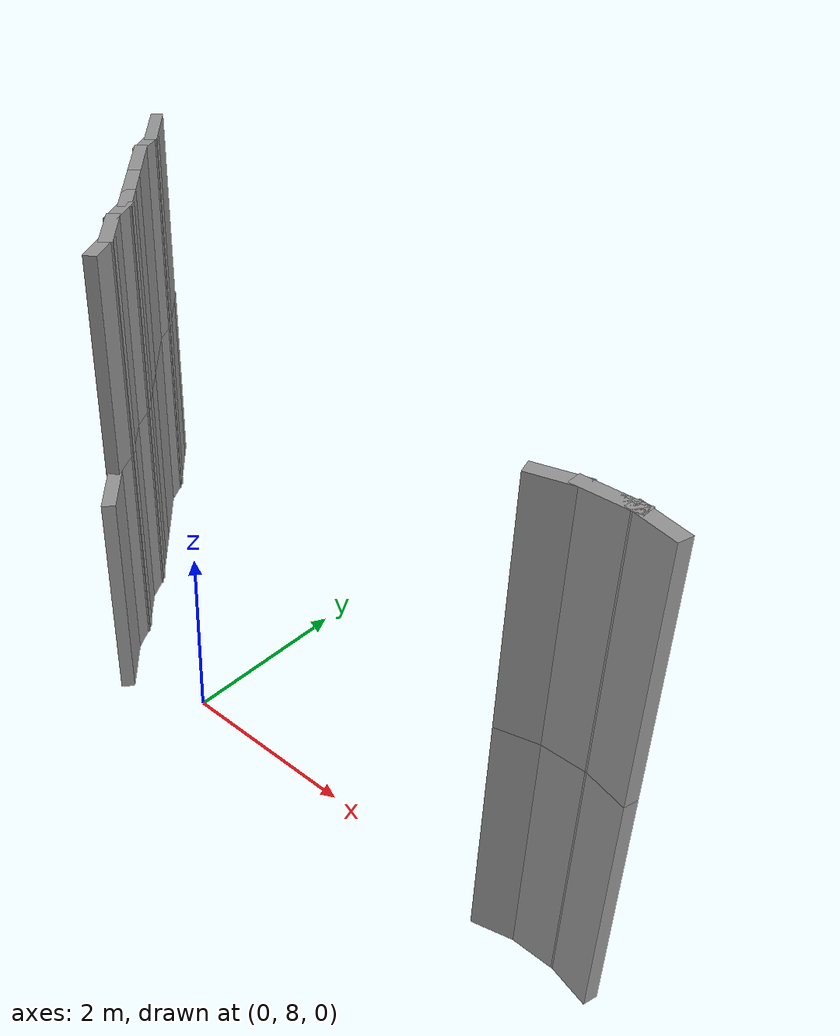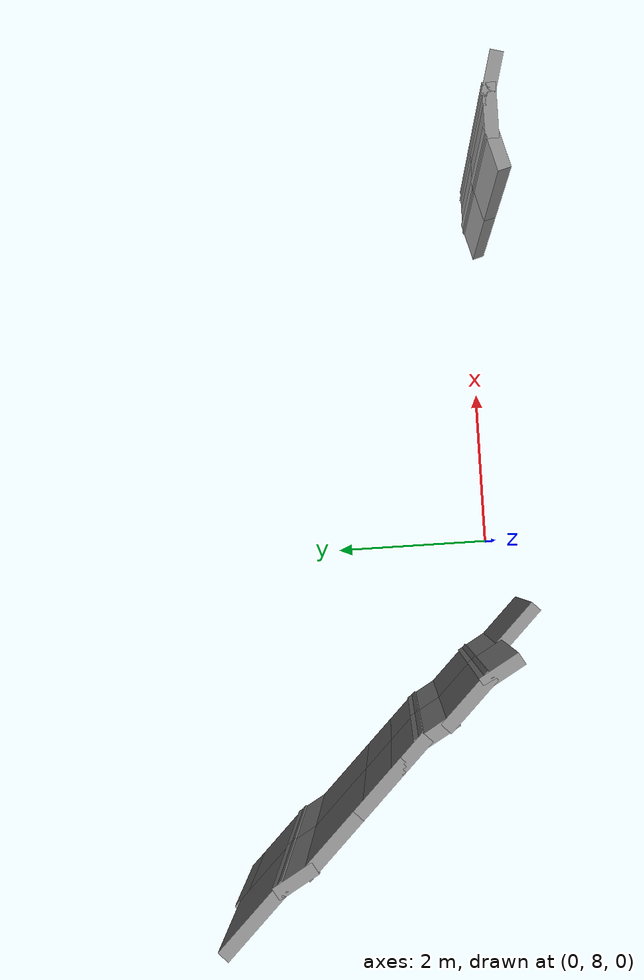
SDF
<sdf version="1.7">
 <model name="EnvDC01">
  <link name="Wall_285">
   <pose>4.92828 7.91155 2.5 0 -0 2.87979</pose>
   <visual name="Wall_285_Visual">
    <pose>0 0 1.25 0 -0 0</pose>
    <geometry><box><size>0.5 0.15 2.5</size></box></geometry>
    <material>
     <script><uri>file://media/materials/scripts/gazebo.material</uri><name>Gazebo/Grey</name></script>
     <ambient>1 1 1 1</ambient>
     <shader type="pixel"/>
    </material>
    <meta><layer>1</layer></meta>
   </visual>
   <collision name="Wall_285_Collision">
    <pose>0 0 1.25 0 -0 0</pose>
    <geometry><box><size>0.5 0.15 2.5</size></box></geometry>
    <surface>
     <friction>
      <ode><mu>1</mu><mu2>1</mu2><fdir1>0 0 0</fdir1><slip1>0</slip1><slip2>0</slip2></ode>
      <torsional>
       <coefficient>1</coefficient>
       <patch_radius>0</patch_radius>
       <surface_radius>0</surface_radius>
       <use_patch_radius>1</use_patch_radius>
       <ode><slip>0</slip></ode>
      </torsional>
     </friction>
     <bounce><restitution_coefficient>0</restitution_coefficient><threshold>1e+06</threshold></bounce>
     <contact>
      <collide_without_contact>0</collide_without_contact>
      <collide_without_contact_bitmask>1</collide_without_contact_bitmask>
      <collide_bitmask>1</collide_bitmask>
      <ode>
       <soft_cfm>0</soft_cfm>
       <soft_erp>0.2</soft_erp>
       <kp>1e+13</kp>
       <kd>1</kd>
       <max_vel>0.01</max_vel>
       <min_depth>0</min_depth>
      </ode>
      <bullet>
       <split_impulse>1</split_impulse>
       <split_impulse_penetration_threshold>-0.01</split_impulse_penetration_threshold>
       <soft_cfm>0</soft_cfm>
       <soft_erp>0.2</soft_erp>
       <kp>1e+13</kp>
       <kd>1</kd>
      </bullet>
     </contact>
    </surface>
   </collision>
  </link>
  <link name="Wall_286">
   <pose>4.70925 7.95684 2.5 0 -0 3.14159</pose>
   <visual name="Wall_286_Visual">
    <pose>0 0 1.25 0 -0 0</pose>
    <geometry><box><size>0.25 0.15 2.5</size></box></geometry>
    <material>
     <script><uri>file://media/materials/scripts/gazebo.material</uri><name>Gazebo/Grey</name></script>
     <ambient>1 1 1 1</ambient>
     <shader type="pixel"/>
    </material>
    <meta><layer>1</layer></meta>
   </visual>
   <collision name="Wall_286_Collision">
    <pose>0 0 1.25 0 -0 0</pose>
    <geometry><box><size>0.25 0.15 2.5</size></box></geometry>
    <surface>
     <friction>
      <ode><mu>1</mu><mu2>1</mu2><fdir1>0 0 0</fdir1><slip1>0</slip1><slip2>0</slip2></ode>
      <torsional>
       <coefficient>1</coefficient>
       <patch_radius>0</patch_radius>
       <surface_radius>0</surface_radius>
       <use_patch_radius>1</use_patch_radius>
       <ode><slip>0</slip></ode>
      </torsional>
     </friction>
     <bounce><restitution_coefficient>0</restitution_coefficient><threshold>1e+06</threshold></bounce>
     <contact>
      <collide_without_contact>0</collide_without_contact>
      <collide_without_contact_bitmask>1</collide_without_contact_bitmask>
      <collide_bitmask>1</collide_bitmask>
      <ode>
       <soft_cfm>0</soft_cfm>
       <soft_erp>0.2</soft_erp>
       <kp>1e+13</kp>
       <kd>1</kd>
       <max_vel>0.01</max_vel>
       <min_depth>0</min_depth>
      </ode>
      <bullet>
       <split_impulse>1</split_impulse>
       <split_impulse_penetration_threshold>-0.01</split_impulse_penetration_threshold>
       <soft_cfm>0</soft_cfm>
       <soft_erp>0.2</soft_erp>
       <kp>1e+13</kp>
       <kd>1</kd>
      </bullet>
     </contact>
    </surface>
   </collision>
  </link>
  <link name="Wall_287">
   <pose>4.48425 7.95684 2.5 0 -0 3.14159</pose>
   <visual name="Wall_287_Visual">
    <pose>0 0 1.25 0 -0 0</pose>
    <geometry><box><size>0.5 0.15 2.5</size></box></geometry>
    <material>
     <script><uri>file://media/materials/scripts/gazebo.material</uri><name>Gazebo/Grey</name></script>
     <ambient>1 1 1 1</ambient>
     <shader type="pixel"/>
    </material>
    <meta><layer>1</layer></meta>
   </visual>
   <collision name="Wall_287_Collision">
    <pose>0 0 1.25 0 -0 0</pose>
    <geometry><box><size>0.5 0.15 2.5</size></box></geometry>
    <surface>
     <friction>
      <ode><mu>1</mu><mu2>1</mu2><fdir1>0 0 0</fdir1><slip1>0</slip1><slip2>0</slip2></ode>
      <torsional>
       <coefficient>1</coefficient>
       <patch_radius>0</patch_radius>
       <surface_radius>0</surface_radius>
       <use_patch_radius>1</use_patch_radius>
       <ode><slip>0</slip></ode>
      </torsional>
     </friction>
     <bounce><restitution_coefficient>0</restitution_coefficient><threshold>1e+06</threshold></bounce>
     <contact>
      <collide_without_contact>0</collide_without_contact>
      <collide_without_contact_bitmask>1</collide_without_contact_bitmask>
      <collide_bitmask>1</collide_bitmask>
      <ode>
       <soft_cfm>0</soft_cfm>
       <soft_erp>0.2</soft_erp>
       <kp>1e+13</kp>
       <kd>1</kd>
       <max_vel>0.01</max_vel>
       <min_depth>0</min_depth>
      </ode>
      <bullet>
       <split_impulse>1</split_impulse>
       <split_impulse_penetration_threshold>-0.01</split_impulse_penetration_threshold>
       <soft_cfm>0</soft_cfm>
       <soft_erp>0.2</soft_erp>
       <kp>1e+13</kp>
       <kd>1</kd>
      </bullet>
     </contact>
    </surface>
   </collision>
  </link>
  <link name="Wall_288">
   <pose>4.14021 7.91155 2.5 0 0 -2.87979</pose>
   <visual name="Wall_288_Visual">
    <pose>0 0 1.25 0 -0 0</pose>
    <geometry><box><size>0.5 0.15 2.5</size></box></geometry>
    <material>
     <script><uri>file://media/materials/scripts/gazebo.material</uri><name>Gazebo/Grey</name></script>
     <ambient>1 1 1 1</ambient>
     <shader type="pixel"/>
    </material>
    <meta><layer>1</layer></meta>
   </visual>
   <collision name="Wall_288_Collision">
    <pose>0 0 1.25 0 -0 0</pose>
    <geometry><box><size>0.5 0.15 2.5</size></box></geometry>
    <surface>
     <friction>
      <ode><mu>1</mu><mu2>1</mu2><fdir1>0 0 0</fdir1><slip1>0</slip1><slip2>0</slip2></ode>
      <torsional>
       <coefficient>1</coefficient>
       <patch_radius>0</patch_radius>
       <surface_radius>0</surface_radius>
       <use_patch_radius>1</use_patch_radius>
       <ode><slip>0</slip></ode>
      </torsional>
     </friction>
     <bounce><restitution_coefficient>0</restitution_coefficient><threshold>1e+06</threshold></bounce>
     <contact>
      <collide_without_contact>0</collide_without_contact>
      <collide_without_contact_bitmask>1</collide_without_contact_bitmask>
      <collide_bitmask>1</collide_bitmask>
      <ode>
       <soft_cfm>0</soft_cfm>
       <soft_erp>0.2</soft_erp>
       <kp>1e+13</kp>
       <kd>1</kd>
       <max_vel>0.01</max_vel>
       <min_depth>0</min_depth>
      </ode>
      <bullet>
       <split_impulse>1</split_impulse>
       <split_impulse_penetration_threshold>-0.01</split_impulse_penetration_threshold>
       <soft_cfm>0</soft_cfm>
       <soft_erp>0.2</soft_erp>
       <kp>1e+13</kp>
       <kd>1</kd>
      </bullet>
     </contact>
    </surface>
   </collision>
  </link>
  <link name="Wall_297">
   <pose>-1.39734 8.22269 2.5 0 -0 2.0944</pose>
   <visual name="Wall_297_Visual">
    <pose>0 0 1.25 0 -0 0</pose>
    <geometry><box><size>0.5 0.15 2.5</size></box></geometry>
    <material>
     <script><uri>file://media/materials/scripts/gazebo.material</uri><name>Gazebo/Grey</name></script>
     <ambient>1 1 1 1</ambient>
     <shader type="pixel"/>
    </material>
    <meta><layer>1</layer></meta>
   </visual>
   <collision name="Wall_297_Collision">
    <pose>0 0 1.25 0 -0 0</pose>
    <geometry><box><size>0.5 0.15 2.5</size></box></geometry>
    <surface>
     <friction>
      <ode><mu>1</mu><mu2>1</mu2><fdir1>0 0 0</fdir1><slip1>0</slip1><slip2>0</slip2></ode>
      <torsional>
       <coefficient>1</coefficient>
       <patch_radius>0</patch_radius>
       <surface_radius>0</surface_radius>
       <use_patch_radius>1</use_patch_radius>
       <ode><slip>0</slip></ode>
      </torsional>
     </friction>
     <bounce><restitution_coefficient>0</restitution_coefficient><threshold>1e+06</threshold></bounce>
     <contact>
      <collide_without_contact>0</collide_without_contact>
      <collide_without_contact_bitmask>1</collide_without_contact_bitmask>
      <collide_bitmask>1</collide_bitmask>
      <ode>
       <soft_cfm>0</soft_cfm>
       <soft_erp>0.2</soft_erp>
       <kp>1e+13</kp>
       <kd>1</kd>
       <max_vel>0.01</max_vel>
       <min_depth>0</min_depth>
      </ode>
      <bullet>
       <split_impulse>1</split_impulse>
       <split_impulse_penetration_threshold>-0.01</split_impulse_penetration_threshold>
       <soft_cfm>0</soft_cfm>
       <soft_erp>0.2</soft_erp>
       <kp>1e+13</kp>
       <kd>1</kd>
      </bullet>
     </contact>
    </surface>
   </collision>
  </link>
  <link name="Wall_298">
   <pose>-1.69697 8.58637 2.5 0 -0 2.35619</pose>
   <visual name="Wall_298_Visual">
    <pose>0 0 1.25 0 -0 0</pose>
    <geometry><box><size>0.75 0.15 2.5</size></box></geometry>
    <material>
     <script><uri>file://media/materials/scripts/gazebo.material</uri><name>Gazebo/Grey</name></script>
     <ambient>1 1 1 1</ambient>
     <shader type="pixel"/>
    </material>
    <meta><layer>1</layer></meta>
   </visual>
   <collision name="Wall_298_Collision">
    <pose>0 0 1.25 0 -0 0</pose>
    <geometry><box><size>0.75 0.15 2.5</size></box></geometry>
    <surface>
     <friction>
      <ode><mu>1</mu><mu2>1</mu2><fdir1>0 0 0</fdir1><slip1>0</slip1><slip2>0</slip2></ode>
      <torsional>
       <coefficient>1</coefficient>
       <patch_radius>0</patch_radius>
       <surface_radius>0</surface_radius>
       <use_patch_radius>1</use_patch_radius>
       <ode><slip>0</slip></ode>
      </torsional>
     </friction>
     <bounce><restitution_coefficient>0</restitution_coefficient><threshold>1e+06</threshold></bounce>
     <contact>
      <collide_without_contact>0</collide_without_contact>
      <collide_without_contact_bitmask>1</collide_without_contact_bitmask>
      <collide_bitmask>1</collide_bitmask>
      <ode>
       <soft_cfm>0</soft_cfm>
       <soft_erp>0.2</soft_erp>
       <kp>1e+13</kp>
       <kd>1</kd>
       <max_vel>0.01</max_vel>
       <min_depth>0</min_depth>
      </ode>
      <bullet>
       <split_impulse>1</split_impulse>
       <split_impulse_penetration_threshold>-0.01</split_impulse_penetration_threshold>
       <soft_cfm>0</soft_cfm>
       <soft_erp>0.2</soft_erp>
       <kp>1e+13</kp>
       <kd>1</kd>
      </bullet>
     </contact>
    </surface>
   </collision>
  </link>
  <link name="Wall_299">
   <pose>-1.9966 8.95006 2.5 0 -0 2.0944</pose>
   <visual name="Wall_299_Visual">
    <pose>0 0 1.25 0 -0 0</pose>
    <geometry><box><size>0.5 0.15 2.5</size></box></geometry>
    <material>
     <script><uri>file://media/materials/scripts/gazebo.material</uri><name>Gazebo/Grey</name></script>
     <ambient>1 1 1 1</ambient>
     <shader type="pixel"/>
    </material>
    <meta><layer>1</layer></meta>
   </visual>
   <collision name="Wall_299_Collision">
    <pose>0 0 1.25 0 -0 0</pose>
    <geometry><box><size>0.5 0.15 2.5</size></box></geometry>
    <surface>
     <friction>
      <ode><mu>1</mu><mu2>1</mu2><fdir1>0 0 0</fdir1><slip1>0</slip1><slip2>0</slip2></ode>
      <torsional>
       <coefficient>1</coefficient>
       <patch_radius>0</patch_radius>
       <surface_radius>0</surface_radius>
       <use_patch_radius>1</use_patch_radius>
       <ode><slip>0</slip></ode>
      </torsional>
     </friction>
     <bounce><restitution_coefficient>0</restitution_coefficient><threshold>1e+06</threshold></bounce>
     <contact>
      <collide_without_contact>0</collide_without_contact>
      <collide_without_contact_bitmask>1</collide_without_contact_bitmask>
      <collide_bitmask>1</collide_bitmask>
      <ode>
       <soft_cfm>0</soft_cfm>
       <soft_erp>0.2</soft_erp>
       <kp>1e+13</kp>
       <kd>1</kd>
       <max_vel>0.01</max_vel>
       <min_depth>0</min_depth>
      </ode>
      <bullet>
       <split_impulse>1</split_impulse>
       <split_impulse_penetration_threshold>-0.01</split_impulse_penetration_threshold>
       <soft_cfm>0</soft_cfm>
       <soft_erp>0.2</soft_erp>
       <kp>1e+13</kp>
       <kd>1</kd>
      </bullet>
     </contact>
    </surface>
   </collision>
  </link>
  <link name="Wall_300">
   <pose>-2.20785 9.22536 2.5 0 -0 2.35619</pose>
   <visual name="Wall_300_Visual">
    <pose>0 0 1.25 0 -0 0</pose>
    <geometry><box><size>0.5 0.15 2.5</size></box></geometry>
    <material>
     <script><uri>file://media/materials/scripts/gazebo.material</uri><name>Gazebo/Grey</name></script>
     <ambient>1 1 1 1</ambient>
     <shader type="pixel"/>
    </material>
    <meta><layer>1</layer></meta>
   </visual>
   <collision name="Wall_300_Collision">
    <pose>0 0 1.25 0 -0 0</pose>
    <geometry><box><size>0.5 0.15 2.5</size></box></geometry>
    <surface>
     <friction>
      <ode><mu>1</mu><mu2>1</mu2><fdir1>0 0 0</fdir1><slip1>0</slip1><slip2>0</slip2></ode>
      <torsional>
       <coefficient>1</coefficient>
       <patch_radius>0</patch_radius>
       <surface_radius>0</surface_radius>
       <use_patch_radius>1</use_patch_radius>
       <ode><slip>0</slip></ode>
      </torsional>
     </friction>
     <bounce><restitution_coefficient>0</restitution_coefficient><threshold>1e+06</threshold></bounce>
     <contact>
      <collide_without_contact>0</collide_without_contact>
      <collide_without_contact_bitmask>1</collide_without_contact_bitmask>
      <collide_bitmask>1</collide_bitmask>
      <ode>
       <soft_cfm>0</soft_cfm>
       <soft_erp>0.2</soft_erp>
       <kp>1e+13</kp>
       <kd>1</kd>
       <max_vel>0.01</max_vel>
       <min_depth>0</min_depth>
      </ode>
      <bullet>
       <split_impulse>1</split_impulse>
       <split_impulse_penetration_threshold>-0.01</split_impulse_penetration_threshold>
       <soft_cfm>0</soft_cfm>
       <soft_erp>0.2</soft_erp>
       <kp>1e+13</kp>
       <kd>1</kd>
      </bullet>
     </contact>
    </surface>
   </collision>
  </link>
  <link name="Wall_301">
   <pose>-2.54372 9.56123 2.5 0 -0 2.35619</pose>
   <visual name="Wall_301_Visual">
    <pose>0 0 1.25 0 -0 0</pose>
    <geometry><box><size>0.75 0.15 2.5</size></box></geometry>
    <material>
     <script><uri>file://media/materials/scripts/gazebo.material</uri><name>Gazebo/Grey</name></script>
     <ambient>1 1 1 1</ambient>
     <shader type="pixel"/>
    </material>
    <meta><layer>1</layer></meta>
   </visual>
   <collision name="Wall_301_Collision">
    <pose>0 0 1.25 0 -0 0</pose>
    <geometry><box><size>0.75 0.15 2.5</size></box></geometry>
    <surface>
     <friction>
      <ode><mu>1</mu><mu2>1</mu2><fdir1>0 0 0</fdir1><slip1>0</slip1><slip2>0</slip2></ode>
      <torsional>
       <coefficient>1</coefficient>
       <patch_radius>0</patch_radius>
       <surface_radius>0</surface_radius>
       <use_patch_radius>1</use_patch_radius>
       <ode><slip>0</slip></ode>
      </torsional>
     </friction>
     <bounce><restitution_coefficient>0</restitution_coefficient><threshold>1e+06</threshold></bounce>
     <contact>
      <collide_without_contact>0</collide_without_contact>
      <collide_without_contact_bitmask>1</collide_without_contact_bitmask>
      <collide_bitmask>1</collide_bitmask>
      <ode>
       <soft_cfm>0</soft_cfm>
       <soft_erp>0.2</soft_erp>
       <kp>1e+13</kp>
       <kd>1</kd>
       <max_vel>0.01</max_vel>
       <min_depth>0</min_depth>
      </ode>
      <bullet>
       <split_impulse>1</split_impulse>
       <split_impulse_penetration_threshold>-0.01</split_impulse_penetration_threshold>
       <soft_cfm>0</soft_cfm>
       <soft_erp>0.2</soft_erp>
       <kp>1e+13</kp>
       <kd>1</kd>
      </bullet>
     </contact>
    </surface>
   </collision>
  </link>
  <link name="Wall_302">
   <pose>-3.05637 10.0739 2.5 0 -0 2.35619</pose>
   <visual name="Wall_302_Visual">
    <pose>0 0 1.25 0 -0 0</pose>
    <geometry><box><size>1 0.15 2.5</size></box></geometry>
    <material>
     <script><uri>file://media/materials/scripts/gazebo.material</uri><name>Gazebo/Grey</name></script>
     <ambient>1 1 1 1</ambient>
     <shader type="pixel"/>
    </material>
    <meta><layer>1</layer></meta>
   </visual>
   <collision name="Wall_302_Collision">
    <pose>0 0 1.25 0 -0 0</pose>
    <geometry><box><size>1 0.15 2.5</size></box></geometry>
    <surface>
     <friction>
      <ode><mu>1</mu><mu2>1</mu2><fdir1>0 0 0</fdir1><slip1>0</slip1><slip2>0</slip2></ode>
      <torsional>
       <coefficient>1</coefficient>
       <patch_radius>0</patch_radius>
       <surface_radius>0</surface_radius>
       <use_patch_radius>1</use_patch_radius>
       <ode><slip>0</slip></ode>
      </torsional>
     </friction>
     <bounce><restitution_coefficient>0</restitution_coefficient><threshold>1e+06</threshold></bounce>
     <contact>
      <collide_without_contact>0</collide_without_contact>
      <collide_without_contact_bitmask>1</collide_without_contact_bitmask>
      <collide_bitmask>1</collide_bitmask>
      <ode>
       <soft_cfm>0</soft_cfm>
       <soft_erp>0.2</soft_erp>
       <kp>1e+13</kp>
       <kd>1</kd>
       <max_vel>0.01</max_vel>
       <min_depth>0</min_depth>
      </ode>
      <bullet>
       <split_impulse>1</split_impulse>
       <split_impulse_penetration_threshold>-0.01</split_impulse_penetration_threshold>
       <soft_cfm>0</soft_cfm>
       <soft_erp>0.2</soft_erp>
       <kp>1e+13</kp>
       <kd>1</kd>
      </bullet>
     </contact>
    </surface>
   </collision>
  </link>
  <link name="Wall_303">
   <pose>-3.44439 10.526 2.5 0 -0 2.0944</pose>
   <visual name="Wall_303_Visual">
    <pose>0 0 1.25 0 -0 0</pose>
    <geometry><box><size>0.5 0.15 2.5</size></box></geometry>
    <material>
     <script><uri>file://media/materials/scripts/gazebo.material</uri><name>Gazebo/Grey</name></script>
     <ambient>1 1 1 1</ambient>
     <shader type="pixel"/>
    </material>
    <meta><layer>1</layer></meta>
   </visual>
   <collision name="Wall_303_Collision">
    <pose>0 0 1.25 0 -0 0</pose>
    <geometry><box><size>0.5 0.15 2.5</size></box></geometry>
    <surface>
     <friction>
      <ode><mu>1</mu><mu2>1</mu2><fdir1>0 0 0</fdir1><slip1>0</slip1><slip2>0</slip2></ode>
      <torsional>
       <coefficient>1</coefficient>
       <patch_radius>0</patch_radius>
       <surface_radius>0</surface_radius>
       <use_patch_radius>1</use_patch_radius>
       <ode><slip>0</slip></ode>
      </torsional>
     </friction>
     <bounce><restitution_coefficient>0</restitution_coefficient><threshold>1e+06</threshold></bounce>
     <contact>
      <collide_without_contact>0</collide_without_contact>
      <collide_without_contact_bitmask>1</collide_without_contact_bitmask>
      <collide_bitmask>1</collide_bitmask>
      <ode>
       <soft_cfm>0</soft_cfm>
       <soft_erp>0.2</soft_erp>
       <kp>1e+13</kp>
       <kd>1</kd>
       <max_vel>0.01</max_vel>
       <min_depth>0</min_depth>
      </ode>
      <bullet>
       <split_impulse>1</split_impulse>
       <split_impulse_penetration_threshold>-0.01</split_impulse_penetration_threshold>
       <soft_cfm>0</soft_cfm>
       <soft_erp>0.2</soft_erp>
       <kp>1e+13</kp>
       <kd>1</kd>
      </bullet>
     </contact>
    </surface>
   </collision>
  </link>
  <link name="Wall_304">
   <pose>-3.83242 10.978 2.5 0 -0 2.35619</pose>
   <visual name="Wall_304_Visual">
    <pose>0 0 1.25 0 -0 0</pose>
    <geometry><box><size>1 0.15 2.5</size></box></geometry>
    <material>
     <script><uri>file://media/materials/scripts/gazebo.material</uri><name>Gazebo/Grey</name></script>
     <ambient>1 1 1 1</ambient>
     <shader type="pixel"/>
    </material>
    <meta><layer>1</layer></meta>
   </visual>
   <collision name="Wall_304_Collision">
    <pose>0 0 1.25 0 -0 0</pose>
    <geometry><box><size>1 0.15 2.5</size></box></geometry>
    <surface>
     <friction>
      <ode><mu>1</mu><mu2>1</mu2><fdir1>0 0 0</fdir1><slip1>0</slip1><slip2>0</slip2></ode>
      <torsional>
       <coefficient>1</coefficient>
       <patch_radius>0</patch_radius>
       <surface_radius>0</surface_radius>
       <use_patch_radius>1</use_patch_radius>
       <ode><slip>0</slip></ode>
      </torsional>
     </friction>
     <bounce><restitution_coefficient>0</restitution_coefficient><threshold>1e+06</threshold></bounce>
     <contact>
      <collide_without_contact>0</collide_without_contact>
      <collide_without_contact_bitmask>1</collide_without_contact_bitmask>
      <collide_bitmask>1</collide_bitmask>
      <ode>
       <soft_cfm>0</soft_cfm>
       <soft_erp>0.2</soft_erp>
       <kp>1e+13</kp>
       <kd>1</kd>
       <max_vel>0.01</max_vel>
       <min_depth>0</min_depth>
      </ode>
      <bullet>
       <split_impulse>1</split_impulse>
       <split_impulse_penetration_threshold>-0.01</split_impulse_penetration_threshold>
       <soft_cfm>0</soft_cfm>
       <soft_erp>0.2</soft_erp>
       <kp>1e+13</kp>
       <kd>1</kd>
      </bullet>
     </contact>
    </surface>
   </collision>
  </link>
  <link name="Wall_73">
   <pose>4.92828 7.91155 0 0 -0 2.87979</pose>
   <visual name="Wall_73_Visual">
    <pose>0 0 1.25 0 -0 0</pose>
    <geometry><box><size>0.5 0.15 2.5</size></box></geometry>
    <material>
     <script><uri>file://media/materials/scripts/gazebo.material</uri><name>Gazebo/Grey</name></script>
     <ambient>1 1 1 1</ambient>
     <shader type="pixel"/>
    </material>
    <meta><layer>0</layer></meta>
   </visual>
   <collision name="Wall_73_Collision">
    <pose>0 0 1.25 0 -0 0</pose>
    <geometry><box><size>0.5 0.15 2.5</size></box></geometry>
    <surface>
     <friction>
      <ode><mu>1</mu><mu2>1</mu2><fdir1>0 0 0</fdir1><slip1>0</slip1><slip2>0</slip2></ode>
      <torsional>
       <coefficient>1</coefficient>
       <patch_radius>0</patch_radius>
       <surface_radius>0</surface_radius>
       <use_patch_radius>1</use_patch_radius>
       <ode><slip>0</slip></ode>
      </torsional>
     </friction>
     <bounce><restitution_coefficient>0</restitution_coefficient><threshold>1e+06</threshold></bounce>
     <contact>
      <collide_without_contact>0</collide_without_contact>
      <collide_without_contact_bitmask>1</collide_without_contact_bitmask>
      <collide_bitmask>1</collide_bitmask>
      <ode>
       <soft_cfm>0</soft_cfm>
       <soft_erp>0.2</soft_erp>
       <kp>1e+13</kp>
       <kd>1</kd>
       <max_vel>0.01</max_vel>
       <min_depth>0</min_depth>
      </ode>
      <bullet>
       <split_impulse>1</split_impulse>
       <split_impulse_penetration_threshold>-0.01</split_impulse_penetration_threshold>
       <soft_cfm>0</soft_cfm>
       <soft_erp>0.2</soft_erp>
       <kp>1e+13</kp>
       <kd>1</kd>
      </bullet>
     </contact>
    </surface>
   </collision>
  </link>
  <link name="Wall_74">
   <pose>4.70925 7.95684 0 0 -0 3.14159</pose>
   <visual name="Wall_74_Visual">
    <pose>0 0 1.25 0 -0 0</pose>
    <geometry><box><size>0.25 0.15 2.5</size></box></geometry>
    <material>
     <script><uri>file://media/materials/scripts/gazebo.material</uri><name>Gazebo/Grey</name></script>
     <ambient>1 1 1 1</ambient>
     <shader type="pixel"/>
    </material>
    <meta><layer>0</layer></meta>
   </visual>
   <collision name="Wall_74_Collision">
    <pose>0 0 1.25 0 -0 0</pose>
    <geometry><box><size>0.25 0.15 2.5</size></box></geometry>
    <surface>
     <friction>
      <ode><mu>1</mu><mu2>1</mu2><fdir1>0 0 0</fdir1><slip1>0</slip1><slip2>0</slip2></ode>
      <torsional>
       <coefficient>1</coefficient>
       <patch_radius>0</patch_radius>
       <surface_radius>0</surface_radius>
       <use_patch_radius>1</use_patch_radius>
       <ode><slip>0</slip></ode>
      </torsional>
     </friction>
     <bounce><restitution_coefficient>0</restitution_coefficient><threshold>1e+06</threshold></bounce>
     <contact>
      <collide_without_contact>0</collide_without_contact>
      <collide_without_contact_bitmask>1</collide_without_contact_bitmask>
      <collide_bitmask>1</collide_bitmask>
      <ode>
       <soft_cfm>0</soft_cfm>
       <soft_erp>0.2</soft_erp>
       <kp>1e+13</kp>
       <kd>1</kd>
       <max_vel>0.01</max_vel>
       <min_depth>0</min_depth>
      </ode>
      <bullet>
       <split_impulse>1</split_impulse>
       <split_impulse_penetration_threshold>-0.01</split_impulse_penetration_threshold>
       <soft_cfm>0</soft_cfm>
       <soft_erp>0.2</soft_erp>
       <kp>1e+13</kp>
       <kd>1</kd>
      </bullet>
     </contact>
    </surface>
   </collision>
  </link>
  <link name="Wall_75">
   <pose>4.48424 7.95684 0 0 -0 3.14159</pose>
   <visual name="Wall_75_Visual">
    <pose>0 0 1.25 0 -0 0</pose>
    <geometry><box><size>0.5 0.15 2.5</size></box></geometry>
    <material>
     <script><uri>file://media/materials/scripts/gazebo.material</uri><name>Gazebo/Grey</name></script>
     <ambient>1 1 1 1</ambient>
     <shader type="pixel"/>
    </material>
    <meta><layer>0</layer></meta>
   </visual>
   <collision name="Wall_75_Collision">
    <pose>0 0 1.25 0 -0 0</pose>
    <geometry><box><size>0.5 0.15 2.5</size></box></geometry>
    <surface>
     <friction>
      <ode><mu>1</mu><mu2>1</mu2><fdir1>0 0 0</fdir1><slip1>0</slip1><slip2>0</slip2></ode>
      <torsional>
       <coefficient>1</coefficient>
       <patch_radius>0</patch_radius>
       <surface_radius>0</surface_radius>
       <use_patch_radius>1</use_patch_radius>
       <ode><slip>0</slip></ode>
      </torsional>
     </friction>
     <bounce><restitution_coefficient>0</restitution_coefficient><threshold>1e+06</threshold></bounce>
     <contact>
      <collide_without_contact>0</collide_without_contact>
      <collide_without_contact_bitmask>1</collide_without_contact_bitmask>
      <collide_bitmask>1</collide_bitmask>
      <ode>
       <soft_cfm>0</soft_cfm>
       <soft_erp>0.2</soft_erp>
       <kp>1e+13</kp>
       <kd>1</kd>
       <max_vel>0.01</max_vel>
       <min_depth>0</min_depth>
      </ode>
      <bullet>
       <split_impulse>1</split_impulse>
       <split_impulse_penetration_threshold>-0.01</split_impulse_penetration_threshold>
       <soft_cfm>0</soft_cfm>
       <soft_erp>0.2</soft_erp>
       <kp>1e+13</kp>
       <kd>1</kd>
      </bullet>
     </contact>
    </surface>
   </collision>
  </link>
  <link name="Wall_76">
   <pose>4.14021 7.91155 0 0 0 -2.87979</pose>
   <visual name="Wall_76_Visual">
    <pose>0 0 1.25 0 -0 0</pose>
    <geometry><box><size>0.5 0.15 2.5</size></box></geometry>
    <material>
     <script><uri>file://media/materials/scripts/gazebo.material</uri><name>Gazebo/Grey</name></script>
     <ambient>1 1 1 1</ambient>
     <shader type="pixel"/>
    </material>
    <meta><layer>0</layer></meta>
   </visual>
   <collision name="Wall_76_Collision">
    <pose>0 0 1.25 0 -0 0</pose>
    <geometry><box><size>0.5 0.15 2.5</size></box></geometry>
    <surface>
     <friction>
      <ode><mu>1</mu><mu2>1</mu2><fdir1>0 0 0</fdir1><slip1>0</slip1><slip2>0</slip2></ode>
      <torsional>
       <coefficient>1</coefficient>
       <patch_radius>0</patch_radius>
       <surface_radius>0</surface_radius>
       <use_patch_radius>1</use_patch_radius>
       <ode><slip>0</slip></ode>
      </torsional>
     </friction>
     <bounce><restitution_coefficient>0</restitution_coefficient><threshold>1e+06</threshold></bounce>
     <contact>
      <collide_without_contact>0</collide_without_contact>
      <collide_without_contact_bitmask>1</collide_without_contact_bitmask>
      <collide_bitmask>1</collide_bitmask>
      <ode>
       <soft_cfm>0</soft_cfm>
       <soft_erp>0.2</soft_erp>
       <kp>1e+13</kp>
       <kd>1</kd>
       <max_vel>0.01</max_vel>
       <min_depth>0</min_depth>
      </ode>
      <bullet>
       <split_impulse>1</split_impulse>
       <split_impulse_penetration_threshold>-0.01</split_impulse_penetration_threshold>
       <soft_cfm>0</soft_cfm>
       <soft_erp>0.2</soft_erp>
       <kp>1e+13</kp>
       <kd>1</kd>
      </bullet>
     </contact>
    </surface>
   </collision>
  </link>
  <link name="Wall_85">
   <pose>-1.09771 7.859 0 0 -0 2.35619</pose>
   <visual name="Wall_85_Visual">
    <pose>0 0 1.25 0 -0 0</pose>
    <geometry><box><size>0.75 0.15 2.5</size></box></geometry>
    <material>
     <script><uri>file://media/materials/scripts/gazebo.material</uri><name>Gazebo/Grey</name></script>
     <ambient>1 1 1 1</ambient>
     <shader type="pixel"/>
    </material>
    <meta><layer>0</layer></meta>
   </visual>
   <collision name="Wall_85_Collision">
    <pose>0 0 1.25 0 -0 0</pose>
    <geometry><box><size>0.75 0.15 2.5</size></box></geometry>
    <surface>
     <friction>
      <ode><mu>1</mu><mu2>1</mu2><fdir1>0 0 0</fdir1><slip1>0</slip1><slip2>0</slip2></ode>
      <torsional>
       <coefficient>1</coefficient>
       <patch_radius>0</patch_radius>
       <surface_radius>0</surface_radius>
       <use_patch_radius>1</use_patch_radius>
       <ode><slip>0</slip></ode>
      </torsional>
     </friction>
     <bounce><restitution_coefficient>0</restitution_coefficient><threshold>1e+06</threshold></bounce>
     <contact>
      <collide_without_contact>0</collide_without_contact>
      <collide_without_contact_bitmask>1</collide_without_contact_bitmask>
      <collide_bitmask>1</collide_bitmask>
      <ode>
       <soft_cfm>0</soft_cfm>
       <soft_erp>0.2</soft_erp>
       <kp>1e+13</kp>
       <kd>1</kd>
       <max_vel>0.01</max_vel>
       <min_depth>0</min_depth>
      </ode>
      <bullet>
       <split_impulse>1</split_impulse>
       <split_impulse_penetration_threshold>-0.01</split_impulse_penetration_threshold>
       <soft_cfm>0</soft_cfm>
       <soft_erp>0.2</soft_erp>
       <kp>1e+13</kp>
       <kd>1</kd>
      </bullet>
     </contact>
    </surface>
   </collision>
  </link>
  <link name="Wall_86">
   <pose>-1.39734 8.22269 0 0 -0 2.0944</pose>
   <visual name="Wall_86_Visual">
    <pose>0 0 1.25 0 -0 0</pose>
    <geometry><box><size>0.5 0.15 2.5</size></box></geometry>
    <material>
     <script><uri>file://media/materials/scripts/gazebo.material</uri><name>Gazebo/Grey</name></script>
     <ambient>1 1 1 1</ambient>
     <shader type="pixel"/>
    </material>
    <meta><layer>0</layer></meta>
   </visual>
   <collision name="Wall_86_Collision">
    <pose>0 0 1.25 0 -0 0</pose>
    <geometry><box><size>0.5 0.15 2.5</size></box></geometry>
    <surface>
     <friction>
      <ode><mu>1</mu><mu2>1</mu2><fdir1>0 0 0</fdir1><slip1>0</slip1><slip2>0</slip2></ode>
      <torsional>
       <coefficient>1</coefficient>
       <patch_radius>0</patch_radius>
       <surface_radius>0</surface_radius>
       <use_patch_radius>1</use_patch_radius>
       <ode><slip>0</slip></ode>
      </torsional>
     </friction>
     <bounce><restitution_coefficient>0</restitution_coefficient><threshold>1e+06</threshold></bounce>
     <contact>
      <collide_without_contact>0</collide_without_contact>
      <collide_without_contact_bitmask>1</collide_without_contact_bitmask>
      <collide_bitmask>1</collide_bitmask>
      <ode>
       <soft_cfm>0</soft_cfm>
       <soft_erp>0.2</soft_erp>
       <kp>1e+13</kp>
       <kd>1</kd>
       <max_vel>0.01</max_vel>
       <min_depth>0</min_depth>
      </ode>
      <bullet>
       <split_impulse>1</split_impulse>
       <split_impulse_penetration_threshold>-0.01</split_impulse_penetration_threshold>
       <soft_cfm>0</soft_cfm>
       <soft_erp>0.2</soft_erp>
       <kp>1e+13</kp>
       <kd>1</kd>
      </bullet>
     </contact>
    </surface>
   </collision>
  </link>
  <link name="Wall_87">
   <pose>-1.69697 8.58637 0 0 -0 2.35619</pose>
   <visual name="Wall_87_Visual">
    <pose>0 0 1.25 0 -0 0</pose>
    <geometry><box><size>0.75 0.15 2.5</size></box></geometry>
    <material>
     <script><uri>file://media/materials/scripts/gazebo.material</uri><name>Gazebo/Grey</name></script>
     <ambient>1 1 1 1</ambient>
     <shader type="pixel"/>
    </material>
    <meta><layer>0</layer></meta>
   </visual>
   <collision name="Wall_87_Collision">
    <pose>0 0 1.25 0 -0 0</pose>
    <geometry><box><size>0.75 0.15 2.5</size></box></geometry>
    <surface>
     <friction>
      <ode><mu>1</mu><mu2>1</mu2><fdir1>0 0 0</fdir1><slip1>0</slip1><slip2>0</slip2></ode>
      <torsional>
       <coefficient>1</coefficient>
       <patch_radius>0</patch_radius>
       <surface_radius>0</surface_radius>
       <use_patch_radius>1</use_patch_radius>
       <ode><slip>0</slip></ode>
      </torsional>
     </friction>
     <bounce><restitution_coefficient>0</restitution_coefficient><threshold>1e+06</threshold></bounce>
     <contact>
      <collide_without_contact>0</collide_without_contact>
      <collide_without_contact_bitmask>1</collide_without_contact_bitmask>
      <collide_bitmask>1</collide_bitmask>
      <ode>
       <soft_cfm>0</soft_cfm>
       <soft_erp>0.2</soft_erp>
       <kp>1e+13</kp>
       <kd>1</kd>
       <max_vel>0.01</max_vel>
       <min_depth>0</min_depth>
      </ode>
      <bullet>
       <split_impulse>1</split_impulse>
       <split_impulse_penetration_threshold>-0.01</split_impulse_penetration_threshold>
       <soft_cfm>0</soft_cfm>
       <soft_erp>0.2</soft_erp>
       <kp>1e+13</kp>
       <kd>1</kd>
      </bullet>
     </contact>
    </surface>
   </collision>
  </link>
  <link name="Wall_88">
   <pose>-1.9966 8.95006 0 0 -0 2.0944</pose>
   <visual name="Wall_88_Visual">
    <pose>0 0 1.25 0 -0 0</pose>
    <geometry><box><size>0.5 0.15 2.5</size></box></geometry>
    <material>
     <script><uri>file://media/materials/scripts/gazebo.material</uri><name>Gazebo/Grey</name></script>
     <ambient>1 1 1 1</ambient>
     <shader type="pixel"/>
    </material>
    <meta><layer>0</layer></meta>
   </visual>
   <collision name="Wall_88_Collision">
    <pose>0 0 1.25 0 -0 0</pose>
    <geometry><box><size>0.5 0.15 2.5</size></box></geometry>
    <surface>
     <friction>
      <ode><mu>1</mu><mu2>1</mu2><fdir1>0 0 0</fdir1><slip1>0</slip1><slip2>0</slip2></ode>
      <torsional>
       <coefficient>1</coefficient>
       <patch_radius>0</patch_radius>
       <surface_radius>0</surface_radius>
       <use_patch_radius>1</use_patch_radius>
       <ode><slip>0</slip></ode>
      </torsional>
     </friction>
     <bounce><restitution_coefficient>0</restitution_coefficient><threshold>1e+06</threshold></bounce>
     <contact>
      <collide_without_contact>0</collide_without_contact>
      <collide_without_contact_bitmask>1</collide_without_contact_bitmask>
      <collide_bitmask>1</collide_bitmask>
      <ode>
       <soft_cfm>0</soft_cfm>
       <soft_erp>0.2</soft_erp>
       <kp>1e+13</kp>
       <kd>1</kd>
       <max_vel>0.01</max_vel>
       <min_depth>0</min_depth>
      </ode>
      <bullet>
       <split_impulse>1</split_impulse>
       <split_impulse_penetration_threshold>-0.01</split_impulse_penetration_threshold>
       <soft_cfm>0</soft_cfm>
       <soft_erp>0.2</soft_erp>
       <kp>1e+13</kp>
       <kd>1</kd>
      </bullet>
     </contact>
    </surface>
   </collision>
  </link>
  <link name="Wall_89">
   <pose>-2.20785 9.22536 0 0 -0 2.35619</pose>
   <visual name="Wall_89_Visual">
    <pose>0 0 1.25 0 -0 0</pose>
    <geometry><box><size>0.5 0.15 2.5</size></box></geometry>
    <material>
     <script><uri>file://media/materials/scripts/gazebo.material</uri><name>Gazebo/Grey</name></script>
     <ambient>1 1 1 1</ambient>
     <shader type="pixel"/>
    </material>
    <meta><layer>0</layer></meta>
   </visual>
   <collision name="Wall_89_Collision">
    <pose>0 0 1.25 0 -0 0</pose>
    <geometry><box><size>0.5 0.15 2.5</size></box></geometry>
    <surface>
     <friction>
      <ode><mu>1</mu><mu2>1</mu2><fdir1>0 0 0</fdir1><slip1>0</slip1><slip2>0</slip2></ode>
      <torsional>
       <coefficient>1</coefficient>
       <patch_radius>0</patch_radius>
       <surface_radius>0</surface_radius>
       <use_patch_radius>1</use_patch_radius>
       <ode><slip>0</slip></ode>
      </torsional>
     </friction>
     <bounce><restitution_coefficient>0</restitution_coefficient><threshold>1e+06</threshold></bounce>
     <contact>
      <collide_without_contact>0</collide_without_contact>
      <collide_without_contact_bitmask>1</collide_without_contact_bitmask>
      <collide_bitmask>1</collide_bitmask>
      <ode>
       <soft_cfm>0</soft_cfm>
       <soft_erp>0.2</soft_erp>
       <kp>1e+13</kp>
       <kd>1</kd>
       <max_vel>0.01</max_vel>
       <min_depth>0</min_depth>
      </ode>
      <bullet>
       <split_impulse>1</split_impulse>
       <split_impulse_penetration_threshold>-0.01</split_impulse_penetration_threshold>
       <soft_cfm>0</soft_cfm>
       <soft_erp>0.2</soft_erp>
       <kp>1e+13</kp>
       <kd>1</kd>
      </bullet>
     </contact>
    </surface>
   </collision>
  </link>
  <link name="Wall_90">
   <pose>-2.54372 9.56123 0 0 -0 2.35619</pose>
   <visual name="Wall_90_Visual">
    <pose>0 0 1.25 0 -0 0</pose>
    <geometry><box><size>0.75 0.15 2.5</size></box></geometry>
    <material>
     <script><uri>file://media/materials/scripts/gazebo.material</uri><name>Gazebo/Grey</name></script>
     <ambient>1 1 1 1</ambient>
     <shader type="pixel"/>
    </material>
    <meta><layer>0</layer></meta>
   </visual>
   <collision name="Wall_90_Collision">
    <pose>0 0 1.25 0 -0 0</pose>
    <geometry><box><size>0.75 0.15 2.5</size></box></geometry>
    <surface>
     <friction>
      <ode><mu>1</mu><mu2>1</mu2><fdir1>0 0 0</fdir1><slip1>0</slip1><slip2>0</slip2></ode>
      <torsional>
       <coefficient>1</coefficient>
       <patch_radius>0</patch_radius>
       <surface_radius>0</surface_radius>
       <use_patch_radius>1</use_patch_radius>
       <ode><slip>0</slip></ode>
      </torsional>
     </friction>
     <bounce><restitution_coefficient>0</restitution_coefficient><threshold>1e+06</threshold></bounce>
     <contact>
      <collide_without_contact>0</collide_without_contact>
      <collide_without_contact_bitmask>1</collide_without_contact_bitmask>
      <collide_bitmask>1</collide_bitmask>
      <ode>
       <soft_cfm>0</soft_cfm>
       <soft_erp>0.2</soft_erp>
       <kp>1e+13</kp>
       <kd>1</kd>
       <max_vel>0.01</max_vel>
       <min_depth>0</min_depth>
      </ode>
      <bullet>
       <split_impulse>1</split_impulse>
       <split_impulse_penetration_threshold>-0.01</split_impulse_penetration_threshold>
       <soft_cfm>0</soft_cfm>
       <soft_erp>0.2</soft_erp>
       <kp>1e+13</kp>
       <kd>1</kd>
      </bullet>
     </contact>
    </surface>
   </collision>
  </link>
  <link name="Wall_92">
   <pose>-3.05637 10.0739 0 0 -0 2.35619</pose>
   <visual name="Wall_92_Visual">
    <pose>0 0 1.25 0 -0 0</pose>
    <geometry><box><size>1 0.15 2.5</size></box></geometry>
    <material>
     <script><uri>file://media/materials/scripts/gazebo.material</uri><name>Gazebo/Grey</name></script>
     <ambient>1 1 1 1</ambient>
     <shader type="pixel"/>
    </material>
    <meta><layer>0</layer></meta>
   </visual>
   <collision name="Wall_92_Collision">
    <pose>0 0 1.25 0 -0 0</pose>
    <geometry><box><size>1 0.15 2.5</size></box></geometry>
    <surface>
     <friction>
      <ode><mu>1</mu><mu2>1</mu2><fdir1>0 0 0</fdir1><slip1>0</slip1><slip2>0</slip2></ode>
      <torsional>
       <coefficient>1</coefficient>
       <patch_radius>0</patch_radius>
       <surface_radius>0</surface_radius>
       <use_patch_radius>1</use_patch_radius>
       <ode><slip>0</slip></ode>
      </torsional>
     </friction>
     <bounce><restitution_coefficient>0</restitution_coefficient><threshold>1e+06</threshold></bounce>
     <contact>
      <collide_without_contact>0</collide_without_contact>
      <collide_without_contact_bitmask>1</collide_without_contact_bitmask>
      <collide_bitmask>1</collide_bitmask>
      <ode>
       <soft_cfm>0</soft_cfm>
       <soft_erp>0.2</soft_erp>
       <kp>1e+13</kp>
       <kd>1</kd>
       <max_vel>0.01</max_vel>
       <min_depth>0</min_depth>
      </ode>
      <bullet>
       <split_impulse>1</split_impulse>
       <split_impulse_penetration_threshold>-0.01</split_impulse_penetration_threshold>
       <soft_cfm>0</soft_cfm>
       <soft_erp>0.2</soft_erp>
       <kp>1e+13</kp>
       <kd>1</kd>
      </bullet>
     </contact>
    </surface>
   </collision>
  </link>
  <link name="Wall_93">
   <pose>-3.44439 10.526 0 0 -0 2.0944</pose>
   <visual name="Wall_93_Visual">
    <pose>0 0 1.25 0 -0 0</pose>
    <geometry><box><size>0.5 0.15 2.5</size></box></geometry>
    <material>
     <script><uri>file://media/materials/scripts/gazebo.material</uri><name>Gazebo/Grey</name></script>
     <ambient>1 1 1 1</ambient>
     <shader type="pixel"/>
    </material>
    <meta><layer>0</layer></meta>
   </visual>
   <collision name="Wall_93_Collision">
    <pose>0 0 1.25 0 -0 0</pose>
    <geometry><box><size>0.5 0.15 2.5</size></box></geometry>
    <surface>
     <friction>
      <ode><mu>1</mu><mu2>1</mu2><fdir1>0 0 0</fdir1><slip1>0</slip1><slip2>0</slip2></ode>
      <torsional>
       <coefficient>1</coefficient>
       <patch_radius>0</patch_radius>
       <surface_radius>0</surface_radius>
       <use_patch_radius>1</use_patch_radius>
       <ode><slip>0</slip></ode>
      </torsional>
     </friction>
     <bounce><restitution_coefficient>0</restitution_coefficient><threshold>1e+06</threshold></bounce>
     <contact>
      <collide_without_contact>0</collide_without_contact>
      <collide_without_contact_bitmask>1</collide_without_contact_bitmask>
      <collide_bitmask>1</collide_bitmask>
      <ode>
       <soft_cfm>0</soft_cfm>
       <soft_erp>0.2</soft_erp>
       <kp>1e+13</kp>
       <kd>1</kd>
       <max_vel>0.01</max_vel>
       <min_depth>0</min_depth>
      </ode>
      <bullet>
       <split_impulse>1</split_impulse>
       <split_impulse_penetration_threshold>-0.01</split_impulse_penetration_threshold>
       <soft_cfm>0</soft_cfm>
       <soft_erp>0.2</soft_erp>
       <kp>1e+13</kp>
       <kd>1</kd>
      </bullet>
     </contact>
    </surface>
   </collision>
  </link>
  <link name="Wall_94">
   <pose>-3.83242 10.978 0 0 -0 2.35619</pose>
   <visual name="Wall_94_Visual">
    <pose>0 0 1.25 0 -0 0</pose>
    <geometry><box><size>1 0.15 2.5</size></box></geometry>
    <material>
     <script><uri>file://media/materials/scripts/gazebo.material</uri><name>Gazebo/Grey</name></script>
     <ambient>1 1 1 1</ambient>
     <shader type="pixel"/>
    </material>
    <meta><layer>0</layer></meta>
   </visual>
   <collision name="Wall_94_Collision">
    <pose>0 0 1.25 0 -0 0</pose>
    <geometry><box><size>1 0.15 2.5</size></box></geometry>
    <surface>
     <friction>
      <ode><mu>1</mu><mu2>1</mu2><fdir1>0 0 0</fdir1><slip1>0</slip1><slip2>0</slip2></ode>
      <torsional>
       <coefficient>1</coefficient>
       <patch_radius>0</patch_radius>
       <surface_radius>0</surface_radius>
       <use_patch_radius>1</use_patch_radius>
       <ode><slip>0</slip></ode>
      </torsional>
     </friction>
     <bounce><restitution_coefficient>0</restitution_coefficient><threshold>1e+06</threshold></bounce>
     <contact>
      <collide_without_contact>0</collide_without_contact>
      <collide_without_contact_bitmask>1</collide_without_contact_bitmask>
      <collide_bitmask>1</collide_bitmask>
      <ode>
       <soft_cfm>0</soft_cfm>
       <soft_erp>0.2</soft_erp>
       <kp>1e+13</kp>
       <kd>1</kd>
       <max_vel>0.01</max_vel>
       <min_depth>0</min_depth>
      </ode>
      <bullet>
       <split_impulse>1</split_impulse>
       <split_impulse_penetration_threshold>-0.01</split_impulse_penetration_threshold>
       <soft_cfm>0</soft_cfm>
       <soft_erp>0.2</soft_erp>
       <kp>1e+13</kp>
       <kd>1</kd>
      </bullet>
     </contact>
    </surface>
   </collision>
  </link>
  <link name="Wall_95">
   <pose>-4.16829 11.3139 0 0 -0 2.35619</pose>
   <visual name="Wall_95_Visual">
    <pose>0 0 1.25 0 -0 0</pose>
    <geometry><box><size>0.25 0.15 2.5</size></box></geometry>
    <material>
     <script><uri>file://media/materials/scripts/gazebo.material</uri><name>Gazebo/Grey</name></script>
     <ambient>1 1 1 1</ambient>
     <shader type="pixel"/>
    </material>
    <meta><layer>0</layer></meta>
   </visual>
   <collision name="Wall_95_Collision">
    <pose>0 0 1.25 0 -0 0</pose>
    <geometry><box><size>0.25 0.15 2.5</size></box></geometry>
    <surface>
     <friction>
      <ode><mu>1</mu><mu2>1</mu2><fdir1>0 0 0</fdir1><slip1>0</slip1><slip2>0</slip2></ode>
      <torsional>
       <coefficient>1</coefficient>
       <patch_radius>0</patch_radius>
       <surface_radius>0</surface_radius>
       <use_patch_radius>1</use_patch_radius>
       <ode><slip>0</slip></ode>
      </torsional>
     </friction>
     <bounce><restitution_coefficient>0</restitution_coefficient><threshold>1e+06</threshold></bounce>
     <contact>
      <collide_without_contact>0</collide_without_contact>
      <collide_without_contact_bitmask>1</collide_without_contact_bitmask>
      <collide_bitmask>1</collide_bitmask>
      <ode>
       <soft_cfm>0</soft_cfm>
       <soft_erp>0.2</soft_erp>
       <kp>1e+13</kp>
       <kd>1</kd>
       <max_vel>0.01</max_vel>
       <min_depth>0</min_depth>
      </ode>
      <bullet>
       <split_impulse>1</split_impulse>
       <split_impulse_penetration_threshold>-0.01</split_impulse_penetration_threshold>
       <soft_cfm>0</soft_cfm>
       <soft_erp>0.2</soft_erp>
       <kp>1e+13</kp>
       <kd>1</kd>
      </bullet>
     </contact>
    </surface>
   </collision>
  </link>
  <static>1</static>
 </model>
</sdf>
